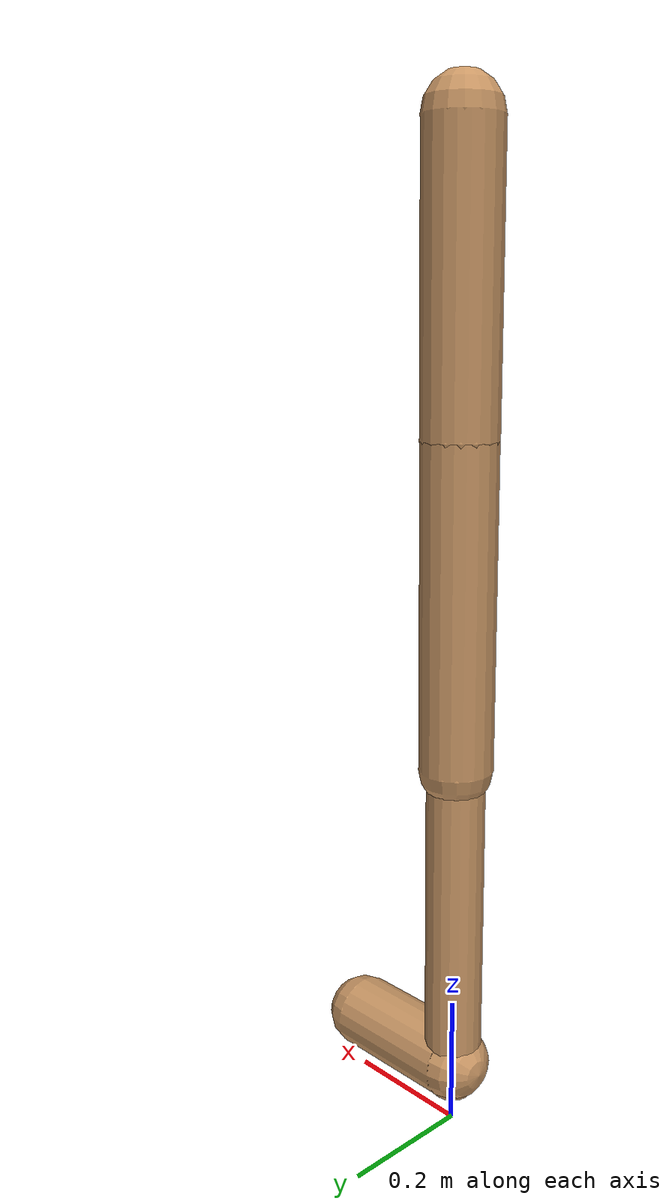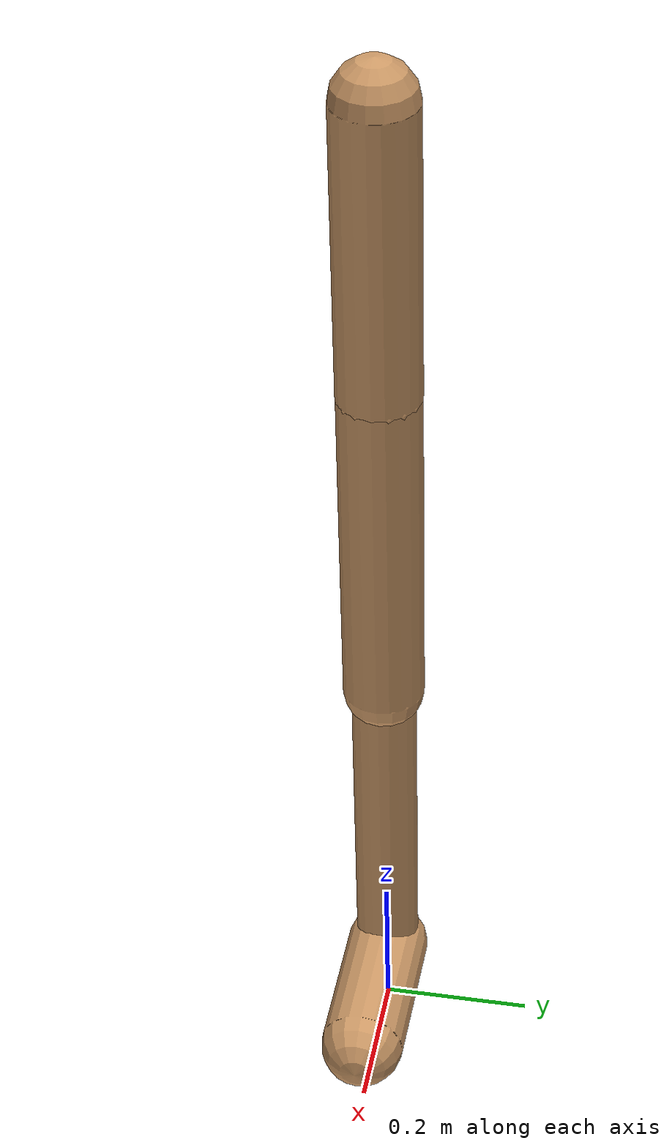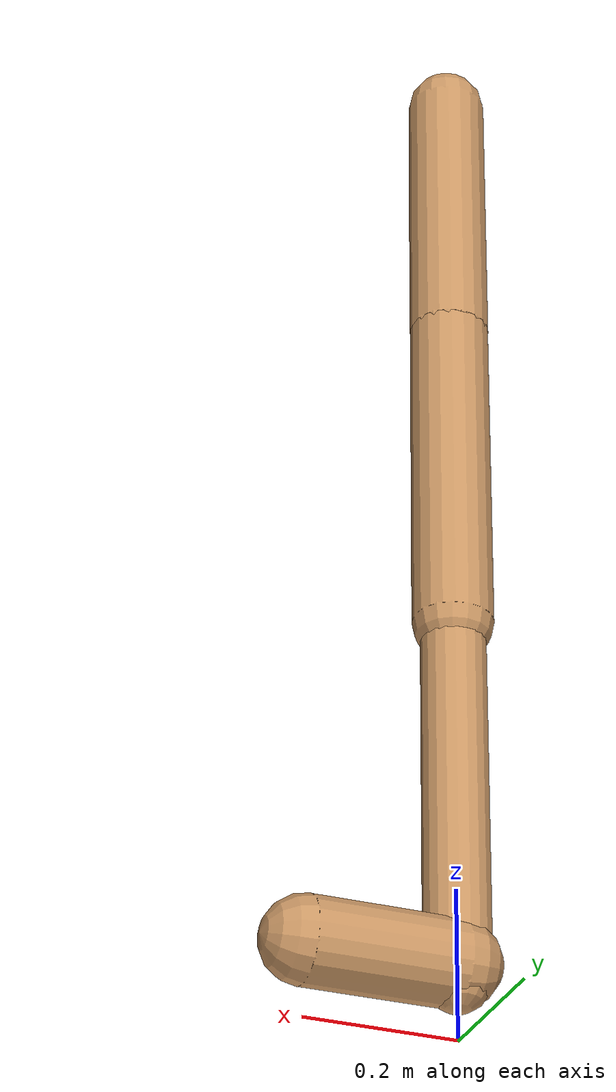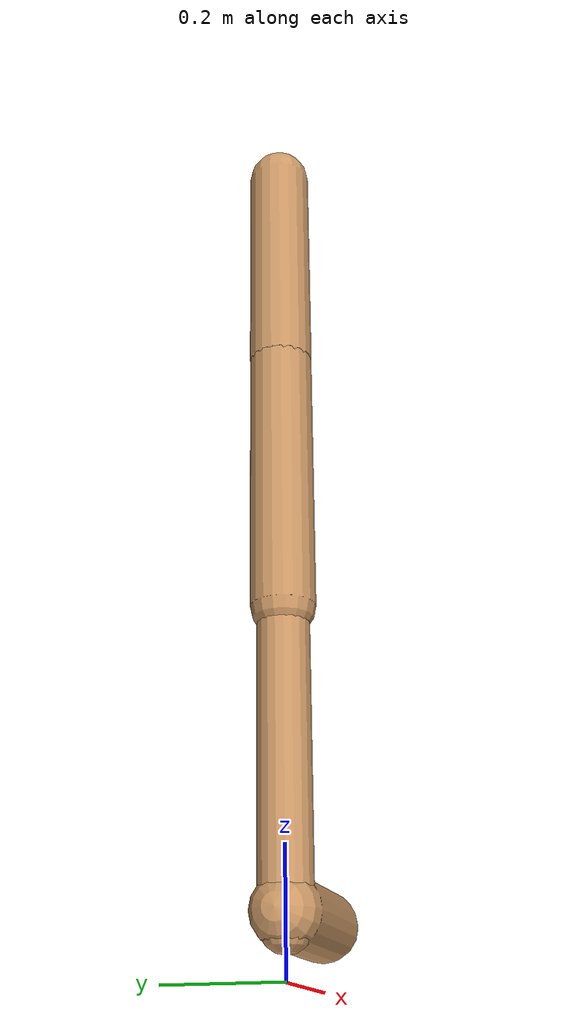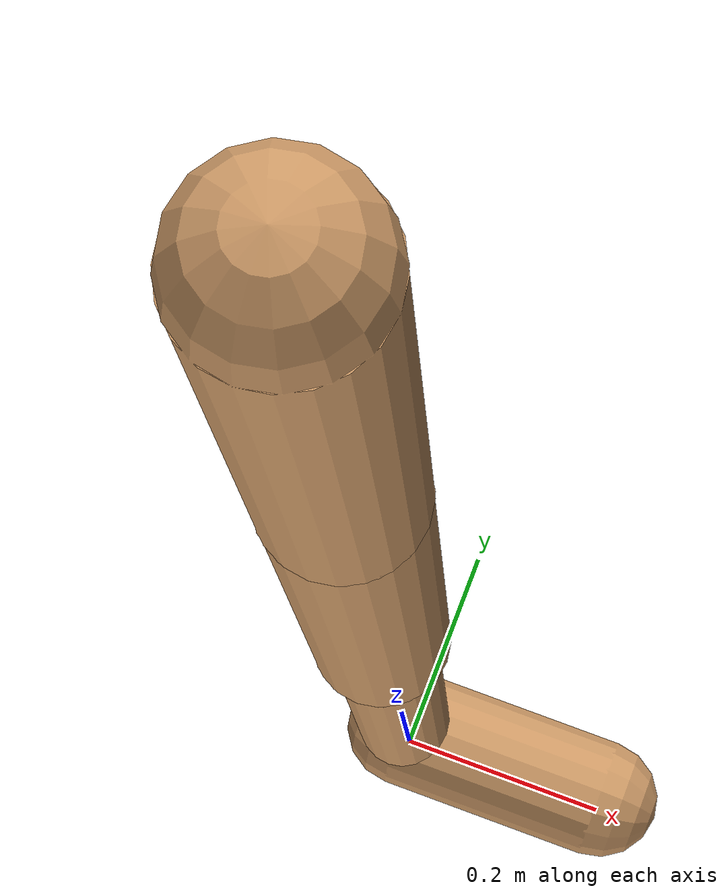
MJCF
<mujoco model="walker2d">
  <compiler angle="degree" coordinate="global" inertiafromgeom="true" />
  <default>
    <joint armature="0.01" damping=".1" limited="true" />
    <geom conaffinity="0" condim="3" contype="1" density="1000" friction="0.8 .1 .1" rgba="0.8 0.6 .4 1" />
  </default>
  <option integrator="RK4" timestep="0.002" />
  <worldbody>

    <body name="torso" pos="0 0 0.037236747321398665">
      <joint armature="0" axis="1 0 0" damping="0" limited="false" name="ignorex" pos="0 0 0" stiffness="0" type="slide" />
      <joint armature="0" axis="0 0 1" damping="0" limited="false" name="ignorez" pos="0 0 0" ref="1.25" stiffness="0" type="slide" />
      <joint armature="0" axis="0 1 0" damping="0" limited="false" name="ignorey" pos="0 0 0" stiffness="0" type="hinge" />
      <geom fromto="0 0 1.45 0 0 1.05" name="torso_geom" size="0.054631068908993524" type="capsule" />
      <body name="thigh">
        <joint axis="0 -1 0" name="thigh_joint" pos="0 0 1.05" range="-150 0" type="hinge" />
        <geom fromto="0.0 0.0 1.05 0.0 0.0 0.5823615407424954" name="thigh_geom" size="0.05422029179198343" type="capsule" />
        <body name="leg" pos="0.0 0.0 -0.017638459257504624">
          <joint axis="0 -1 0" name="leg_joint" pos="0 0 0.6" range="-150 0" type="hinge" />
          <geom fromto="0.0 0.0 0.6 0.0 0.0 0.08040171193610597" name="leg_geom" size="0.043376233433586736" type="capsule" />
          <body name="foot" pos="0.0 0.0 -0.019598288063894034">
            <joint axis="0 -1 0" name="foot_joint" pos="0 0 0.1" range="-45 45" type="hinge" />
            <geom fromto="0.0 0.0 0.1 0.19935610696822606 0.0 0.1" name="foot_geom" size="0.05664945838466748" type="capsule" />
          </body>
        </body>
      </body>

      <body name="thigh_left">
        <joint axis="0 -1 0" name="thigh_left_joint" pos="0 0 1.05" range="-150 0" type="hinge" />
        <geom fromto="0.0 0.0 1.05 0.0 0.0 0.5823615407424954" name="thigh_left_geom" rgba=".7 .3 .6 1" size="0.05422029179198343" type="capsule" />
        <body name="leg_left" pos="0.0 0.0 -0.017638459257504624">
          <joint axis="0 -1 0" name="leg_left_joint" pos="0 0 0.6" range="-150 0" type="hinge" />
          <geom fromto="0.0 0.0 0.6 0.0 0.0 0.08040171193610597" name="leg_left_geom" rgba=".7 .3 .6 1" size="0.043376233433586736" type="capsule" />
          <body name="foot_left" pos="0.0 0.0 -0.019598288063894034">
            <joint axis="0 -1 0" name="foot_left_joint" pos="0 0 0.1" range="-45 45" type="hinge" />
            <geom fromto="0.0 0.0 0.1 0.19935610696822606 0.0 0.1" name="foot_left_geom" rgba=".7 .3 .6 1" size="0.05664945838466748" type="capsule" />
          </body>
        </body>
      </body>
    </body>
  </worldbody>
  <actuator>

    <motor ctrllimited="true" ctrlrange="-1.0 1.0" gear="100" joint="thigh_joint" />
    <motor ctrllimited="true" ctrlrange="-1.0 1.0" gear="100" joint="leg_joint" />
    <motor ctrllimited="true" ctrlrange="-1.0 1.0" gear="100" joint="foot_joint" />
    <motor ctrllimited="true" ctrlrange="-1.0 1.0" gear="100" joint="thigh_left_joint" />
    <motor ctrllimited="true" ctrlrange="-1.0 1.0" gear="100" joint="leg_left_joint" />
    <motor ctrllimited="true" ctrlrange="-1.0 1.0" gear="100" joint="foot_left_joint" />

  </actuator>
</mujoco>
